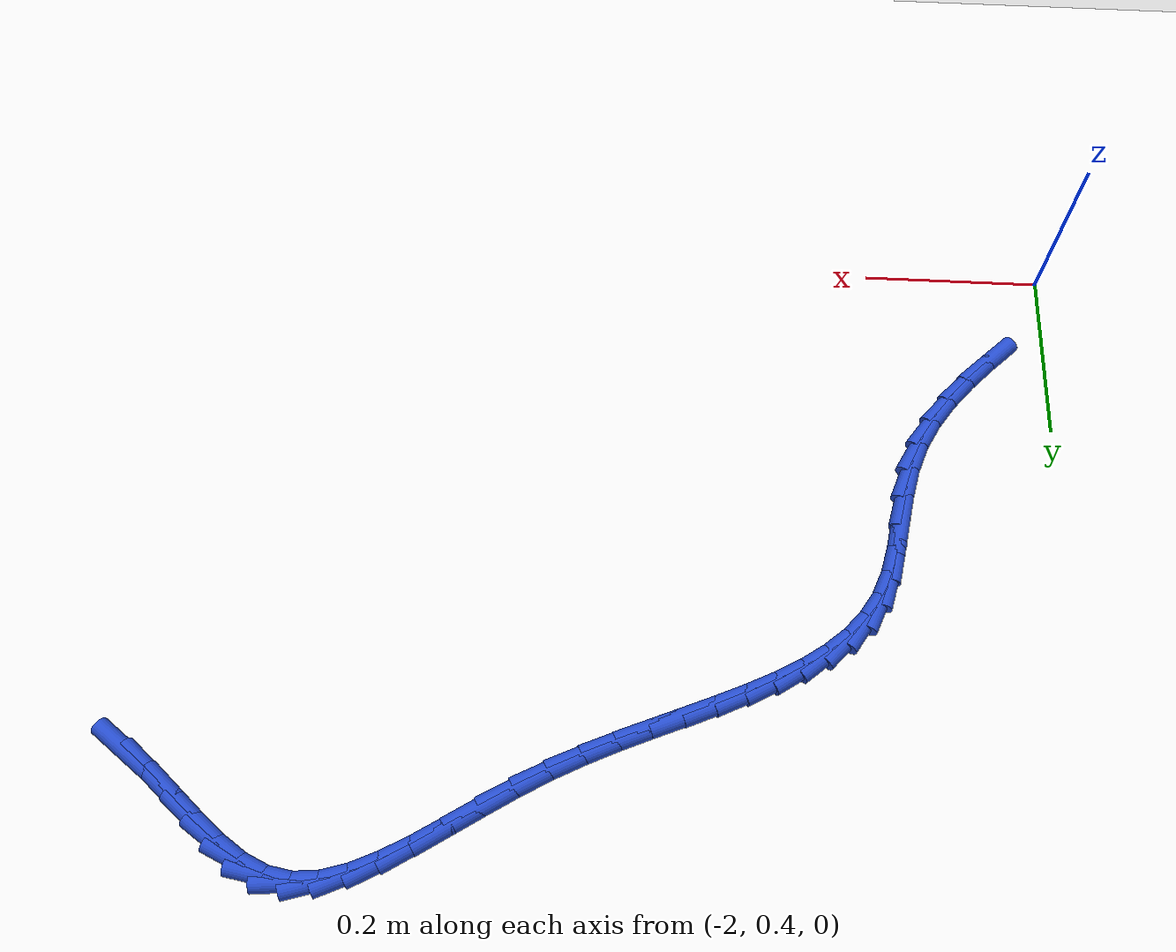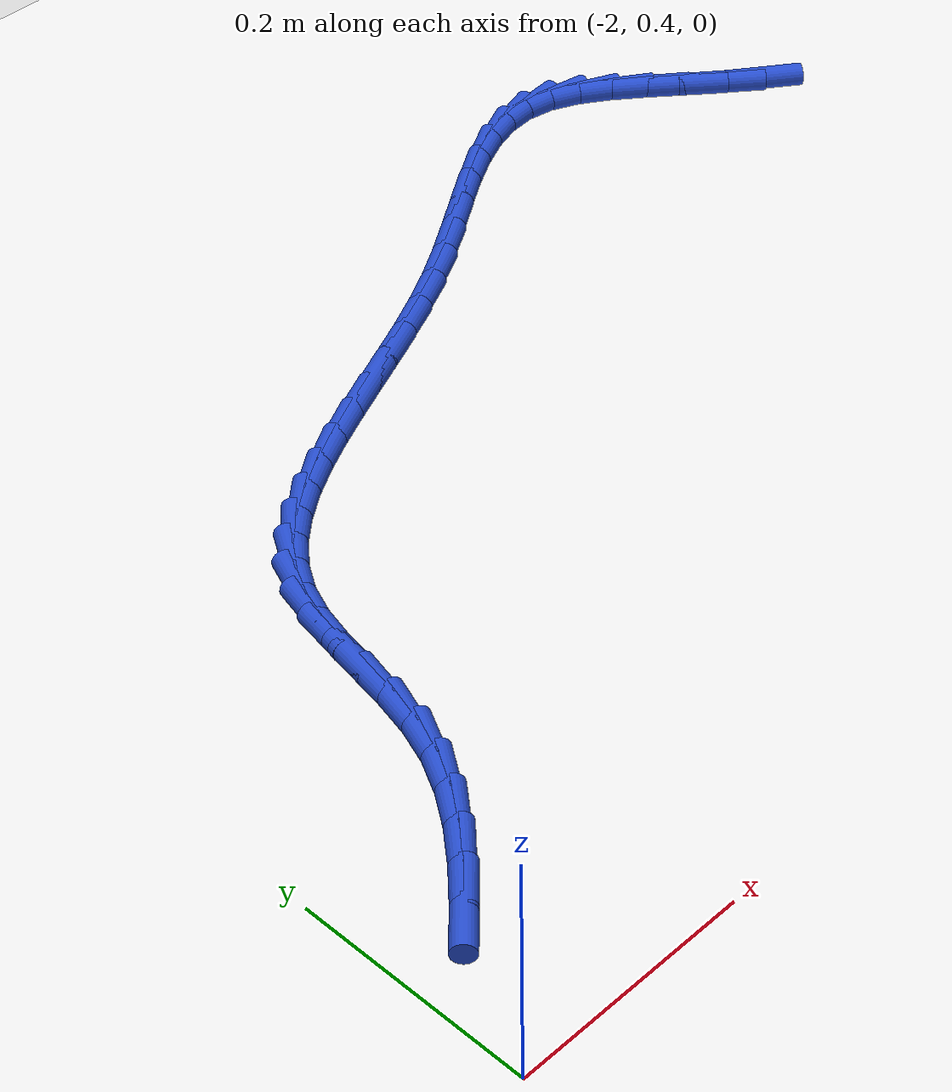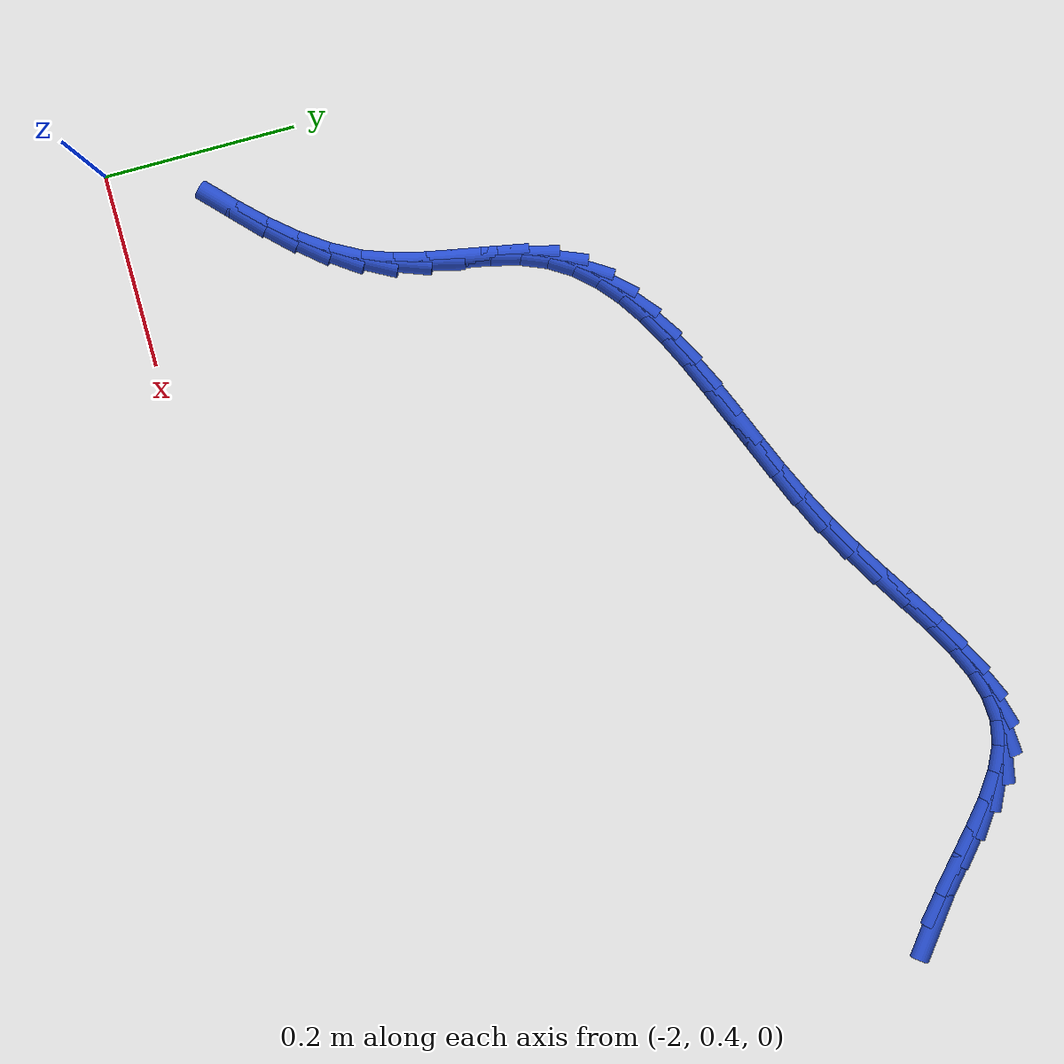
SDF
<sdf version="1.6">
 <world name="default">
  <model name="ground_plane">
   <static>1</static>
   <link name="link">
    <collision name="collision">
     <geometry><plane><normal>0 0 1</normal><size>100 100</size></plane></geometry>
     <surface><friction><ode><mu>100</mu><mu2>50</mu2></ode></friction></surface>
    </collision>
    <visual name="visual">
     <cast_shadows>0</cast_shadows>
     <geometry><plane><normal>0 0 1</normal><size>100 100</size></plane></geometry>
     <material>
      <script><uri>file://media/materials/scripts/gazebo.material</uri><name>Gazebo/WhiteGlow</name></script>
     </material>
    </visual>
   </link>
  </model>
  <model name="line">
   <link name="link_55">
    <pose>-1.046549651702975 1.021825120412035 0.01 0 1.57 -0.6313944586313898</pose>
    <collision name="collision">
     <geometry><cylinder><radius>0.01</radius><length>0.08</length></cylinder></geometry>
    </collision>
    <visual name="visual">
     <material>
      <script><name>Gazebo/Blue</name><uri>file://media/materials/scripts/gazebo.material</uri></script>
     </material>
     <geometry><cylinder><radius>0.01</radius><length>0.08</length></cylinder></geometry>
    </visual>
   </link>
   <link name="link_56">
    <pose>-1.0744736600601417 1.0422446260443186 0.01 0 1.57 -0.6930151942540611</pose>
    <collision name="collision">
     <geometry><cylinder><radius>0.01</radius><length>0.08</length></cylinder></geometry>
    </collision>
    <visual name="visual">
     <material>
      <script><name>Gazebo/Blue</name><uri>file://media/materials/scripts/gazebo.material</uri></script>
     </material>
     <geometry><cylinder><radius>0.01</radius><length>0.08</length></cylinder></geometry>
    </visual>
   </link>
   <link name="link_57">
    <pose>-1.1013145788852308 1.0645338041516346 0.01 0 1.57 -0.7081089089771929</pose>
    <collision name="collision">
     <geometry><cylinder><radius>0.01</radius><length>0.08</length></cylinder></geometry>
    </collision>
    <visual name="visual">
     <material>
      <script><name>Gazebo/Blue</name><uri>file://media/materials/scripts/gazebo.material</uri></script>
     </material>
     <geometry><cylinder><radius>0.01</radius><length>0.08</length></cylinder></geometry>
    </visual>
   </link>
   <link name="link_58">
    <pose>-1.127398676224733 1.0868682026371166 0.01 0 1.57 -0.675508957044422</pose>
    <collision name="collision">
     <geometry><cylinder><radius>0.01</radius><length>0.08</length></cylinder></geometry>
    </collision>
    <visual name="visual">
     <material>
      <script><name>Gazebo/Blue</name><uri>file://media/materials/scripts/gazebo.material</uri></script>
     </material>
     <geometry><cylinder><radius>0.01</radius><length>0.08</length></cylinder></geometry>
    </visual>
   </link>
   <link name="link_59">
    <pose>-1.1530522201251399 1.1074233694039002 0.01 0 1.57 -0.5857948592822503</pose>
    <collision name="collision">
     <geometry><cylinder><radius>0.01</radius><length>0.08</length></cylinder></geometry>
    </collision>
    <visual name="visual">
     <material>
      <script><name>Gazebo/Blue</name><uri>file://media/materials/scripts/gazebo.material</uri></script>
     </material>
     <geometry><cylinder><radius>0.01</radius><length>0.08</length></cylinder></geometry>
    </visual>
   </link>
   <link name="link_60">
    <pose>-1.178601478632944 1.1243748523551196 0.01 0 1.57 -0.42047281858697133</pose>
    <collision name="collision">
     <geometry><cylinder><radius>0.01</radius><length>0.08</length></cylinder></geometry>
    </collision>
    <visual name="visual">
     <material>
      <script><name>Gazebo/Blue</name><uri>file://media/materials/scripts/gazebo.material</uri></script>
     </material>
     <geometry><cylinder><radius>0.01</radius><length>0.08</length></cylinder></geometry>
    </visual>
   </link>
   <link name="link_61">
    <pose>-1.204372719794636 1.1358981993939101 0.01 0 1.57 -0.16664006665563905</pose>
    <collision name="collision">
     <geometry><cylinder><radius>0.01</radius><length>0.08</length></cylinder></geometry>
    </collision>
    <visual name="visual">
     <material>
      <script><name>Gazebo/Blue</name><uri>file://media/materials/scripts/gazebo.material</uri></script>
     </material>
     <geometry><cylinder><radius>0.01</radius><length>0.08</length></cylinder></geometry>
    </visual>
   </link>
   <link name="link_62">
    <pose>-1.2306767790470252 1.1403225386254945 0.01 0 1.57 0.09670289515217058</pose>
    <collision name="collision">
     <geometry><cylinder><radius>0.01</radius><length>0.08</length></cylinder></geometry>
    </collision>
    <visual name="visual">
     <material>
      <script><name>Gazebo/Blue</name><uri>file://media/materials/scripts/gazebo.material</uri></script>
     </material>
     <geometry><cylinder><radius>0.01</radius><length>0.08</length></cylinder></geometry>
    </visual>
   </link>
   <link name="link_63">
    <pose>-1.2576507604541767 1.1377059150319855 0.01 0 1.57 0.29836750721970856</pose>
    <collision name="collision">
     <geometry><cylinder><radius>0.01</radius><length>0.08</length></cylinder></geometry>
    </collision>
    <visual name="visual">
     <material>
      <script><name>Gazebo/Blue</name><uri>file://media/materials/scripts/gazebo.material</uri></script>
     </material>
     <geometry><cylinder><radius>0.01</radius><length>0.08</length></cylinder></geometry>
    </visual>
   </link>
   <link name="link_64">
    <pose>-1.2853223194434207 1.1291955700498728 0.01 0 1.57 0.4363025226950645</pose>
    <collision name="collision">
     <geometry><cylinder><radius>0.01</radius><length>0.08</length></cylinder></geometry>
    </collision>
    <visual name="visual">
     <material>
      <script><name>Gazebo/Blue</name><uri>file://media/materials/scripts/gazebo.material</uri></script>
     </material>
     <geometry><cylinder><radius>0.01</radius><length>0.08</length></cylinder></geometry>
    </visual>
   </link>
   <link name="link_65">
    <pose>-1.3137174021578213 1.1159557553445159 0.01 0 1.57 0.5230431974243606</pose>
    <collision name="collision">
     <geometry><cylinder><radius>0.01</radius><length>0.08</length></cylinder></geometry>
    </collision>
    <visual name="visual">
     <material>
      <script><name>Gazebo/Blue</name><uri>file://media/materials/scripts/gazebo.material</uri></script>
     </material>
     <geometry><cylinder><radius>0.01</radius><length>0.08</length></cylinder></geometry>
    </visual>
   </link>
   <link name="link_66">
    <pose>-1.3428619547404441 1.0991507225812764 0.01 0 1.57 0.570668717510265</pose>
    <collision name="collision">
     <geometry><cylinder><radius>0.01</radius><length>0.08</length></cylinder></geometry>
    </collision>
    <visual name="visual">
     <material>
      <script><name>Gazebo/Blue</name><uri>file://media/materials/scripts/gazebo.material</uri></script>
     </material>
     <geometry><cylinder><radius>0.01</radius><length>0.08</length></cylinder></geometry>
    </visual>
   </link>
   <link name="link_67">
    <pose>-1.3727819233343534 1.0799447234255148 0.01 0 1.57 0.5871418721030882</pose>
    <collision name="collision">
     <geometry><cylinder><radius>0.01</radius><length>0.08</length></cylinder></geometry>
    </collision>
    <visual name="visual">
     <material>
      <script><name>Gazebo/Blue</name><uri>file://media/materials/scripts/gazebo.material</uri></script>
     </material>
     <geometry><cylinder><radius>0.01</radius><length>0.08</length></cylinder></geometry>
    </visual>
   </link>
   <link name="link_68">
    <pose>-1.4035032540826147 1.059502009542592 0.01 0 1.57 0.576565971405068</pose>
    <collision name="collision">
     <geometry><cylinder><radius>0.01</radius><length>0.08</length></cylinder></geometry>
    </collision>
    <visual name="visual">
     <material>
      <script><name>Gazebo/Blue</name><uri>file://media/materials/scripts/gazebo.material</uri></script>
     </material>
     <geometry><cylinder><radius>0.01</radius><length>0.08</length></cylinder></geometry>
    </visual>
   </link>
   <link name="link_69">
    <pose>-1.4350518931282918 1.0389868325978686 0.01 0 1.57 0.5400562445148892</pose>
    <collision name="collision">
     <geometry><cylinder><radius>0.01</radius><length>0.08</length></cylinder></geometry>
    </collision>
    <visual name="visual">
     <material>
      <script><name>Gazebo/Blue</name><uri>file://media/materials/scripts/gazebo.material</uri></script>
     </material>
     <geometry><cylinder><radius>0.01</radius><length>0.08</length></cylinder></geometry>
    </visual>
   </link>
   <link name="link_70">
    <pose>-1.4674533755316481 1.0195619469024544 0.01 0 1.57 0.48790147113323207</pose>
    <collision name="collision">
     <geometry><cylinder><radius>0.01</radius><length>0.08</length></cylinder></geometry>
    </collision>
    <visual name="visual">
     <material>
      <script><name>Gazebo/Blue</name><uri>file://media/materials/scripts/gazebo.material</uri></script>
     </material>
     <geometry><cylinder><radius>0.01</radius><length>0.08</length></cylinder></geometry>
    </visual>
   </link>
   <link name="link_71">
    <pose>-1.500615906725987 1.001962737841111 0.01 0 1.57 0.44622824751929685</pose>
    <collision name="collision">
     <geometry><cylinder><radius>0.01</radius><length>0.08</length></cylinder></geometry>
    </collision>
    <visual name="visual">
     <material>
      <script><name>Gazebo/Blue</name><uri>file://media/materials/scripts/gazebo.material</uri></script>
     </material>
     <geometry><cylinder><radius>0.01</radius><length>0.08</length></cylinder></geometry>
    </visual>
   </link>
   <link name="link_72">
    <pose>-1.5341692627238495 0.9859104216948652 0.01 0 1.57 0.41891009373407645</pose>
    <collision name="collision">
     <geometry><cylinder><radius>0.01</radius><length>0.08</length></cylinder></geometry>
    </collision>
    <visual name="visual">
     <material>
      <script><name>Gazebo/Blue</name><uri>file://media/materials/scripts/gazebo.material</uri></script>
     </material>
     <geometry><cylinder><radius>0.01</radius><length>0.08</length></cylinder></geometry>
    </visual>
   </link>
   <link name="link_73">
    <pose>-1.5677028225978227 0.9709790703507528 0.01 0 1.57 0.40614810938967394</pose>
    <collision name="collision">
     <geometry><cylinder><radius>0.01</radius><length>0.08</length></cylinder></geometry>
    </collision>
    <visual name="visual">
     <material>
      <script><name>Gazebo/Blue</name><uri>file://media/materials/scripts/gazebo.material</uri></script>
     </material>
     <geometry><cylinder><radius>0.01</radius><length>0.08</length></cylinder></geometry>
    </visual>
   </link>
   <link name="link_74">
    <pose>-1.6008059654204922 0.9567427556958079 0.01 0 1.57 0.4085675052500353</pose>
    <collision name="collision">
     <geometry><cylinder><radius>0.01</radius><length>0.08</length></cylinder></geometry>
    </collision>
    <visual name="visual">
     <material>
      <script><name>Gazebo/Blue</name><uri>file://media/materials/scripts/gazebo.material</uri></script>
     </material>
     <geometry><cylinder><radius>0.01</radius><length>0.08</length></cylinder></geometry>
    </visual>
   </link>
   <link name="link_75">
    <pose>-1.6330680702644442 0.9427755496170654 0.01 0 1.57 0.4273853883662749</pose>
    <collision name="collision">
     <geometry><cylinder><radius>0.01</radius><length>0.08</length></cylinder></geometry>
    </collision>
    <visual name="visual">
     <material>
      <script><name>Gazebo/Blue</name><uri>file://media/materials/scripts/gazebo.material</uri></script>
     </material>
     <geometry><cylinder><radius>0.01</radius><length>0.08</length></cylinder></geometry>
    </visual>
   </link>
   <link name="link_76">
    <pose>-1.6640785162022662 0.9286515240015599 0.01 0 1.57 0.46453831258176576</pose>
    <collision name="collision">
     <geometry><cylinder><radius>0.01</radius><length>0.08</length></cylinder></geometry>
    </collision>
    <visual name="visual">
     <material>
      <script><name>Gazebo/Blue</name><uri>file://media/materials/scripts/gazebo.material</uri></script>
     </material>
     <geometry><cylinder><radius>0.01</radius><length>0.08</length></cylinder></geometry>
    </visual>
   </link>
   <link name="link_77">
    <pose>-1.6934266823065436 0.9139447507363267 0.01 0 1.57 0.5227202612666265</pose>
    <collision name="collision">
     <geometry><cylinder><radius>0.01</radius><length>0.08</length></cylinder></geometry>
    </collision>
    <visual name="visual">
     <material>
      <script><name>Gazebo/Blue</name><uri>file://media/materials/scripts/gazebo.material</uri></script>
     </material>
     <geometry><cylinder><radius>0.01</radius><length>0.08</length></cylinder></geometry>
    </visual>
   </link>
   <link name="link_78">
    <pose>-1.7207019476498626 0.8982293017083997 0.01 0 1.57 0.6051775018354557</pose>
    <collision name="collision">
     <geometry><cylinder><radius>0.01</radius><length>0.08</length></cylinder></geometry>
    </collision>
    <visual name="visual">
     <material>
      <script><name>Gazebo/Blue</name><uri>file://media/materials/scripts/gazebo.material</uri></script>
     </material>
     <geometry><cylinder><radius>0.01</radius><length>0.08</length></cylinder></geometry>
    </visual>
   </link>
   <link name="link_79">
    <pose>-1.74549369130481 0.8810792488048139 0.01 0 1.57 0.7149419119155603</pose>
    <collision name="collision">
     <geometry><cylinder><radius>0.01</radius><length>0.08</length></cylinder></geometry>
    </collision>
    <visual name="visual">
     <material>
      <script><name>Gazebo/Blue</name><uri>file://media/materials/scripts/gazebo.material</uri></script>
     </material>
     <geometry><cylinder><radius>0.01</radius><length>0.08</length></cylinder></geometry>
    </visual>
   </link>
   <link name="link_80">
    <pose>-1.7673912923439716 0.8620686639126041 0.01 0 1.57 0.8530864119545841</pose>
    <collision name="collision">
     <geometry><cylinder><radius>0.01</radius><length>0.08</length></cylinder></geometry>
    </collision>
    <visual name="visual">
     <material>
      <script><name>Gazebo/Blue</name><uri>file://media/materials/scripts/gazebo.material</uri></script>
     </material>
     <geometry><cylinder><radius>0.01</radius><length>0.08</length></cylinder></geometry>
    </visual>
   </link>
   <link name="link_81">
    <pose>-1.7859841298399342 0.8407716189188053 0.01 0 1.57 1.0160532233223043</pose>
    <collision name="collision">
     <geometry><cylinder><radius>0.01</radius><length>0.08</length></cylinder></geometry>
    </collision>
    <visual name="visual">
     <material>
      <script><name>Gazebo/Blue</name><uri>file://media/materials/scripts/gazebo.material</uri></script>
     </material>
     <geometry><cylinder><radius>0.01</radius><length>0.08</length></cylinder></geometry>
    </visual>
   </link>
   <link name="link_82">
    <pose>-1.8008615828652836 0.8167621857104518 0.01 0 1.57 1.191692154922163</pose>
    <collision name="collision">
     <geometry><cylinder><radius>0.01</radius><length>0.08</length></cylinder></geometry>
    </collision>
    <visual name="visual">
     <material>
      <script><name>Gazebo/Blue</name><uri>file://media/materials/scripts/gazebo.material</uri></script>
     </material>
     <geometry><cylinder><radius>0.01</radius><length>0.08</length></cylinder></geometry>
    </visual>
   </link>
   <link name="link_83">
    <pose>-1.8116635392112834 0.7896470959109673 0.01 0 1.57 1.3274656334236026</pose>
    <collision name="collision">
     <geometry><cylinder><radius>0.01</radius><length>0.08</length></cylinder></geometry>
    </collision>
    <visual name="visual">
     <material>
      <script><name>Gazebo/Blue</name><uri>file://media/materials/scripts/gazebo.material</uri></script>
     </material>
     <geometry><cylinder><radius>0.01</radius><length>0.08</length></cylinder></geometry>
    </visual>
   </link>
   <link name="link_84">
    <pose>-1.8190928340973127 0.7597203997633625 0.01 0 1.57 1.3912421724365627</pose>
    <collision name="collision">
     <geometry><cylinder><radius>0.01</radius><length>0.08</length></cylinder></geometry>
    </collision>
    <visual name="visual">
     <material>
      <script><name>Gazebo/Blue</name><uri>file://media/materials/scripts/gazebo.material</uri></script>
     </material>
     <geometry><cylinder><radius>0.01</radius><length>0.08</length></cylinder></geometry>
    </visual>
   </link>
   <link name="link_85">
    <pose>-1.8248631203159666 0.7279297581415185 0.01 0 1.57 1.3932244111233627</pose>
    <collision name="collision">
     <geometry><cylinder><radius>0.01</radius><length>0.08</length></cylinder></geometry>
    </collision>
    <visual name="visual">
     <material>
      <script><name>Gazebo/Blue</name><uri>file://media/materials/scripts/gazebo.material</uri></script>
     </material>
     <geometry><cylinder><radius>0.01</radius><length>0.08</length></cylinder></geometry>
    </visual>
   </link>
   <link name="link_86">
    <pose>-1.830728125142189 0.6952487447134605 0.01 0 1.57 1.3384451562328155</pose>
    <collision name="collision">
     <geometry><cylinder><radius>0.01</radius><length>0.08</length></cylinder></geometry>
    </collision>
    <visual name="visual">
     <material>
      <script><name>Gazebo/Blue</name><uri>file://media/materials/scripts/gazebo.material</uri></script>
     </material>
     <geometry><cylinder><radius>0.01</radius><length>0.08</length></cylinder></geometry>
    </visual>
   </link>
   <link name="link_87">
    <pose>-1.838441575850921 0.6626509331472114 0.01 0 1.57 1.2266025062180355</pose>
    <collision name="collision">
     <geometry><cylinder><radius>0.01</radius><length>0.08</length></cylinder></geometry>
    </collision>
    <visual name="visual">
     <material>
      <script><name>Gazebo/Blue</name><uri>file://media/materials/scripts/gazebo.material</uri></script>
     </material>
     <geometry><cylinder><radius>0.01</radius><length>0.08</length></cylinder></geometry>
    </visual>
   </link>
   <link name="link_88">
    <pose>-1.8497491663783034 0.631106238085285 0.01 0 1.57 1.0848513128880815</pose>
    <collision name="collision">
     <geometry><cylinder><radius>0.01</radius><length>0.08</length></cylinder></geometry>
    </collision>
    <visual name="visual">
     <material>
      <script><name>Gazebo/Blue</name><uri>file://media/materials/scripts/gazebo.material</uri></script>
     </material>
     <geometry><cylinder><radius>0.01</radius><length>0.08</length></cylinder></geometry>
    </visual>
   </link>
   <link name="link_89">
    <pose>-1.865546701788183 0.6011974667493465 0.01 0 1.57 0.9670713156896963</pose>
    <collision name="collision">
     <geometry><cylinder><radius>0.01</radius><length>0.08</length></cylinder></geometry>
    </collision>
    <visual name="visual">
     <material>
      <script><name>Gazebo/Blue</name><uri>file://media/materials/scripts/gazebo.material</uri></script>
     </material>
     <geometry><cylinder><radius>0.01</radius><length>0.08</length></cylinder></geometry>
    </visual>
   </link>
   <link name="link_90">
    <pose>-1.8851413050445127 0.572783813368489 0.01 0 1.57 0.8780389361218223</pose>
    <collision name="collision">
     <geometry><cylinder><radius>0.01</radius><length>0.08</length></cylinder></geometry>
    </collision>
    <visual name="visual">
     <material>
      <script><name>Gazebo/Blue</name><uri>file://media/materials/scripts/gazebo.material</uri></script>
     </material>
     <geometry><cylinder><radius>0.01</radius><length>0.08</length></cylinder></geometry>
    </visual>
   </link>
   <link name="link_91">
    <pose>-1.907665925554092 0.5456451395923473 0.01 0 1.57 0.8149179739146704</pose>
    <collision name="collision">
     <geometry><cylinder><radius>0.01</radius><length>0.08</length></cylinder></geometry>
    </collision>
    <visual name="visual">
     <material>
      <script><name>Gazebo/Blue</name><uri>file://media/materials/scripts/gazebo.material</uri></script>
     </material>
     <geometry><cylinder><radius>0.01</radius><length>0.08</length></cylinder></geometry>
    </visual>
   </link>
   <link name="link_92">
    <pose>-1.9322535127237186 0.5195613070705579 0.01 0 1.57 0.7749273321005469</pose>
    <collision name="collision">
     <geometry><cylinder><radius>0.01</radius><length>0.08</length></cylinder></geometry>
    </collision>
    <visual name="visual">
     <material>
      <script><name>Gazebo/Blue</name><uri>file://media/materials/scripts/gazebo.material</uri></script>
     </material>
     <geometry><cylinder><radius>0.01</radius><length>0.08</length></cylinder></geometry>
    </visual>
   </link>
  </model>
 </world>
</sdf>
